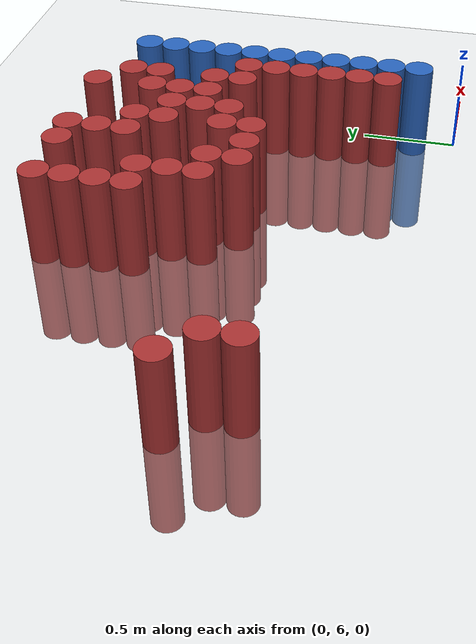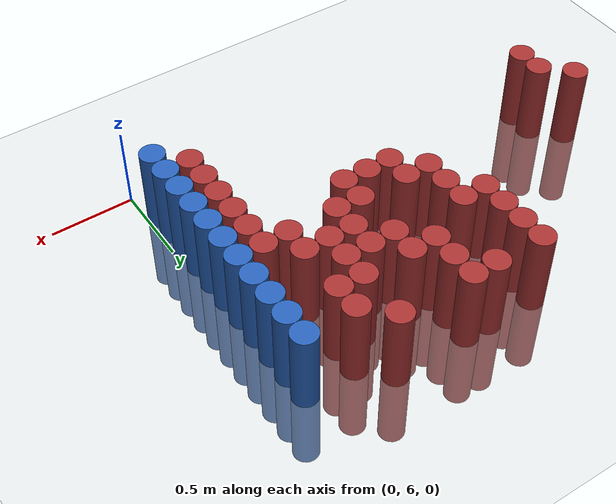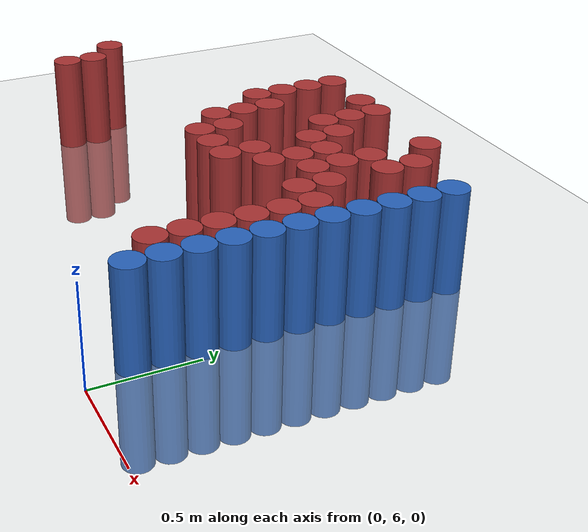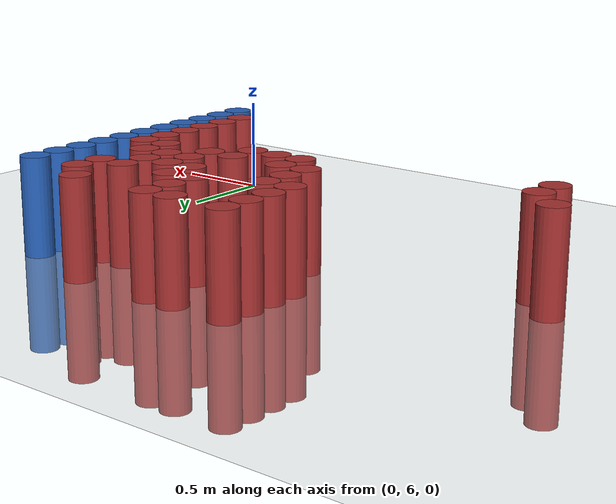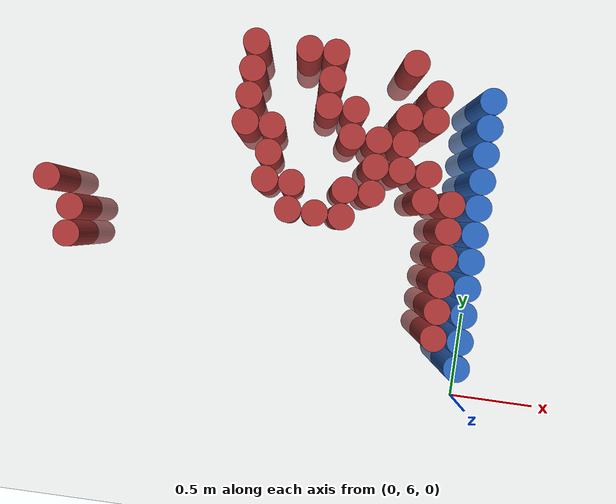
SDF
<sdf version="1.6">
 <world name="default">
  <model name="ground_plane">
   <static>1</static>
   <link name="link">
    <collision name="collision">
     <geometry><plane><normal>0 0 1</normal><size>100 100</size></plane></geometry>
     <surface><friction><ode><mu>100</mu><mu2>50</mu2></ode></friction></surface>
    </collision>
    <visual name="visual">
     <cast_shadows>0</cast_shadows>
     <geometry><plane><normal>0 0 1</normal><size>100 100</size></plane></geometry>
     <material>
      <script><uri>file://media/materials/scripts/gazebo.material</uri><name>Gazebo/Grey</name></script>
     </material>
    </visual>
   </link>
  </model>
  <model name="unit_cylinder_222">
   <static>1</static>
   <pose>-2.475000 6.975000 0.000000 0.000000 0.000000 0.000000</pose>
   <link name="link">
    <inertial>
     <mass>1</mass>
     <inertia><ixx>0.145833</ixx><ixy>0</ixy><ixz>0</ixz><iyy>0.145833</iyy><iyz>0</iyz><izz>0.125</izz></inertia>
    </inertial>
    <collision name="collision">
     <geometry><cylinder><radius>0.075000</radius><length>1</length></cylinder></geometry>
    </collision>
    <visual name="visual">
     <geometry><cylinder><radius>0.075000</radius><length>1</length></cylinder></geometry>
     <material>
      <ambient>0.648000 0.192000 0.192000 1</ambient>
      <diffuse>0.648000 0.192000 0.192000 1</diffuse>
     </material>
     <material>
      <script><name>Gazebo/Grey</name><uri>file://media/materials/scripts/gazebo.material</uri></script>
     </material>
    </visual>
   </link>
  </model>
  <model name="unit_cylinder_223">
   <static>1</static>
   <pose>-2.325000 6.675000 0.000000 0.000000 0.000000 0.000000</pose>
   <link name="link">
    <inertial>
     <mass>1</mass>
     <inertia><ixx>0.145833</ixx><ixy>0</ixy><ixz>0</ixz><iyy>0.145833</iyy><iyz>0</iyz><izz>0.125</izz></inertia>
    </inertial>
    <collision name="collision">
     <geometry><cylinder><radius>0.075000</radius><length>1</length></cylinder></geometry>
    </collision>
    <visual name="visual">
     <geometry><cylinder><radius>0.075000</radius><length>1</length></cylinder></geometry>
     <material>
      <ambient>0.648000 0.192000 0.192000 1</ambient>
      <diffuse>0.648000 0.192000 0.192000 1</diffuse>
     </material>
     <material>
      <script><name>Gazebo/Grey</name><uri>file://media/materials/scripts/gazebo.material</uri></script>
     </material>
    </visual>
   </link>
  </model>
  <model name="unit_cylinder_224">
   <static>1</static>
   <pose>-2.325000 6.825000 0.000000 0.000000 0.000000 0.000000</pose>
   <link name="link">
    <inertial>
     <mass>1</mass>
     <inertia><ixx>0.145833</ixx><ixy>0</ixy><ixz>0</ixz><iyy>0.145833</iyy><iyz>0</iyz><izz>0.125</izz></inertia>
    </inertial>
    <collision name="collision">
     <geometry><cylinder><radius>0.075000</radius><length>1</length></cylinder></geometry>
    </collision>
    <visual name="visual">
     <geometry><cylinder><radius>0.075000</radius><length>1</length></cylinder></geometry>
     <material>
      <ambient>0.648000 0.192000 0.192000 1</ambient>
      <diffuse>0.648000 0.192000 0.192000 1</diffuse>
     </material>
     <material>
      <script><name>Gazebo/Grey</name><uri>file://media/materials/scripts/gazebo.material</uri></script>
     </material>
    </visual>
   </link>
  </model>
  <model name="unit_cylinder_236">
   <static>1</static>
   <pose>-1.425000 7.425000 0.000000 0.000000 0.000000 0.000000</pose>
   <link name="link">
    <inertial>
     <mass>1</mass>
     <inertia><ixx>0.145833</ixx><ixy>0</ixy><ixz>0</ixz><iyy>0.145833</iyy><iyz>0</iyz><izz>0.125</izz></inertia>
    </inertial>
    <collision name="collision">
     <geometry><cylinder><radius>0.075000</radius><length>1</length></cylinder></geometry>
    </collision>
    <visual name="visual">
     <geometry><cylinder><radius>0.075000</radius><length>1</length></cylinder></geometry>
     <material>
      <ambient>0.648000 0.192000 0.192000 1</ambient>
      <diffuse>0.648000 0.192000 0.192000 1</diffuse>
     </material>
     <material>
      <script><name>Gazebo/Grey</name><uri>file://media/materials/scripts/gazebo.material</uri></script>
     </material>
    </visual>
   </link>
  </model>
  <model name="unit_cylinder_237">
   <static>1</static>
   <pose>-1.425000 7.575000 0.000000 0.000000 0.000000 0.000000</pose>
   <link name="link">
    <inertial>
     <mass>1</mass>
     <inertia><ixx>0.145833</ixx><ixy>0</ixy><ixz>0</ixz><iyy>0.145833</iyy><iyz>0</iyz><izz>0.125</izz></inertia>
    </inertial>
    <collision name="collision">
     <geometry><cylinder><radius>0.075000</radius><length>1</length></cylinder></geometry>
    </collision>
    <visual name="visual">
     <geometry><cylinder><radius>0.075000</radius><length>1</length></cylinder></geometry>
     <material>
      <ambient>0.648000 0.192000 0.192000 1</ambient>
      <diffuse>0.648000 0.192000 0.192000 1</diffuse>
     </material>
     <material>
      <script><name>Gazebo/Grey</name><uri>file://media/materials/scripts/gazebo.material</uri></script>
     </material>
    </visual>
   </link>
  </model>
  <model name="unit_cylinder_238">
   <static>1</static>
   <pose>-1.425000 7.725000 0.000000 0.000000 0.000000 0.000000</pose>
   <link name="link">
    <inertial>
     <mass>1</mass>
     <inertia><ixx>0.145833</ixx><ixy>0</ixy><ixz>0</ixz><iyy>0.145833</iyy><iyz>0</iyz><izz>0.125</izz></inertia>
    </inertial>
    <collision name="collision">
     <geometry><cylinder><radius>0.075000</radius><length>1</length></cylinder></geometry>
    </collision>
    <visual name="visual">
     <geometry><cylinder><radius>0.075000</radius><length>1</length></cylinder></geometry>
     <material>
      <ambient>0.648000 0.192000 0.192000 1</ambient>
      <diffuse>0.648000 0.192000 0.192000 1</diffuse>
     </material>
     <material>
      <script><name>Gazebo/Grey</name><uri>file://media/materials/scripts/gazebo.material</uri></script>
     </material>
    </visual>
   </link>
  </model>
  <model name="unit_cylinder_239">
   <static>1</static>
   <pose>-1.425000 7.875000 0.000000 0.000000 0.000000 0.000000</pose>
   <link name="link">
    <inertial>
     <mass>1</mass>
     <inertia><ixx>0.145833</ixx><ixy>0</ixy><ixz>0</ixz><iyy>0.145833</iyy><iyz>0</iyz><izz>0.125</izz></inertia>
    </inertial>
    <collision name="collision">
     <geometry><cylinder><radius>0.075000</radius><length>1</length></cylinder></geometry>
    </collision>
    <visual name="visual">
     <geometry><cylinder><radius>0.075000</radius><length>1</length></cylinder></geometry>
     <material>
      <ambient>0.648000 0.192000 0.192000 1</ambient>
      <diffuse>0.648000 0.192000 0.192000 1</diffuse>
     </material>
     <material>
      <script><name>Gazebo/Grey</name><uri>file://media/materials/scripts/gazebo.material</uri></script>
     </material>
    </visual>
   </link>
  </model>
  <model name="unit_cylinder_246">
   <static>1</static>
   <pose>-1.275000 7.125000 0.000000 0.000000 0.000000 0.000000</pose>
   <link name="link">
    <inertial>
     <mass>1</mass>
     <inertia><ixx>0.145833</ixx><ixy>0</ixy><ixz>0</ixz><iyy>0.145833</iyy><iyz>0</iyz><izz>0.125</izz></inertia>
    </inertial>
    <collision name="collision">
     <geometry><cylinder><radius>0.075000</radius><length>1</length></cylinder></geometry>
    </collision>
    <visual name="visual">
     <geometry><cylinder><radius>0.075000</radius><length>1</length></cylinder></geometry>
     <material>
      <ambient>0.648000 0.192000 0.192000 1</ambient>
      <diffuse>0.648000 0.192000 0.192000 1</diffuse>
     </material>
     <material>
      <script><name>Gazebo/Grey</name><uri>file://media/materials/scripts/gazebo.material</uri></script>
     </material>
    </visual>
   </link>
  </model>
  <model name="unit_cylinder_247">
   <static>1</static>
   <pose>-1.275000 7.275000 0.000000 0.000000 0.000000 0.000000</pose>
   <link name="link">
    <inertial>
     <mass>1</mass>
     <inertia><ixx>0.145833</ixx><ixy>0</ixy><ixz>0</ixz><iyy>0.145833</iyy><iyz>0</iyz><izz>0.125</izz></inertia>
    </inertial>
    <collision name="collision">
     <geometry><cylinder><radius>0.075000</radius><length>1</length></cylinder></geometry>
    </collision>
    <visual name="visual">
     <geometry><cylinder><radius>0.075000</radius><length>1</length></cylinder></geometry>
     <material>
      <ambient>0.648000 0.192000 0.192000 1</ambient>
      <diffuse>0.648000 0.192000 0.192000 1</diffuse>
     </material>
     <material>
      <script><name>Gazebo/Grey</name><uri>file://media/materials/scripts/gazebo.material</uri></script>
     </material>
    </visual>
   </link>
  </model>
  <model name="unit_cylinder_248">
   <static>1</static>
   <pose>-1.275000 7.425000 0.000000 0.000000 0.000000 0.000000</pose>
   <link name="link">
    <inertial>
     <mass>1</mass>
     <inertia><ixx>0.145833</ixx><ixy>0</ixy><ixz>0</ixz><iyy>0.145833</iyy><iyz>0</iyz><izz>0.125</izz></inertia>
    </inertial>
    <collision name="collision">
     <geometry><cylinder><radius>0.075000</radius><length>1</length></cylinder></geometry>
    </collision>
    <visual name="visual">
     <geometry><cylinder><radius>0.075000</radius><length>1</length></cylinder></geometry>
     <material>
      <ambient>0.648000 0.192000 0.192000 1</ambient>
      <diffuse>0.648000 0.192000 0.192000 1</diffuse>
     </material>
     <material>
      <script><name>Gazebo/Grey</name><uri>file://media/materials/scripts/gazebo.material</uri></script>
     </material>
    </visual>
   </link>
  </model>
  <model name="unit_cylinder_251">
   <static>1</static>
   <pose>-1.125000 6.975000 0.000000 0.000000 0.000000 0.000000</pose>
   <link name="link">
    <inertial>
     <mass>1</mass>
     <inertia><ixx>0.145833</ixx><ixy>0</ixy><ixz>0</ixz><iyy>0.145833</iyy><iyz>0</iyz><izz>0.125</izz></inertia>
    </inertial>
    <collision name="collision">
     <geometry><cylinder><radius>0.075000</radius><length>1</length></cylinder></geometry>
    </collision>
    <visual name="visual">
     <geometry><cylinder><radius>0.075000</radius><length>1</length></cylinder></geometry>
     <material>
      <ambient>0.648000 0.192000 0.192000 1</ambient>
      <diffuse>0.648000 0.192000 0.192000 1</diffuse>
     </material>
     <material>
      <script><name>Gazebo/Grey</name><uri>file://media/materials/scripts/gazebo.material</uri></script>
     </material>
    </visual>
   </link>
  </model>
  <model name="unit_cylinder_252">
   <static>1</static>
   <pose>-1.125000 7.125000 0.000000 0.000000 0.000000 0.000000</pose>
   <link name="link">
    <inertial>
     <mass>1</mass>
     <inertia><ixx>0.145833</ixx><ixy>0</ixy><ixz>0</ixz><iyy>0.145833</iyy><iyz>0</iyz><izz>0.125</izz></inertia>
    </inertial>
    <collision name="collision">
     <geometry><cylinder><radius>0.075000</radius><length>1</length></cylinder></geometry>
    </collision>
    <visual name="visual">
     <geometry><cylinder><radius>0.075000</radius><length>1</length></cylinder></geometry>
     <material>
      <ambient>0.648000 0.192000 0.192000 1</ambient>
      <diffuse>0.648000 0.192000 0.192000 1</diffuse>
     </material>
     <material>
      <script><name>Gazebo/Grey</name><uri>file://media/materials/scripts/gazebo.material</uri></script>
     </material>
    </visual>
   </link>
  </model>
  <model name="unit_cylinder_253">
   <static>1</static>
   <pose>-1.125000 7.875000 0.000000 0.000000 0.000000 0.000000</pose>
   <link name="link">
    <inertial>
     <mass>1</mass>
     <inertia><ixx>0.145833</ixx><ixy>0</ixy><ixz>0</ixz><iyy>0.145833</iyy><iyz>0</iyz><izz>0.125</izz></inertia>
    </inertial>
    <collision name="collision">
     <geometry><cylinder><radius>0.075000</radius><length>1</length></cylinder></geometry>
    </collision>
    <visual name="visual">
     <geometry><cylinder><radius>0.075000</radius><length>1</length></cylinder></geometry>
     <material>
      <ambient>0.648000 0.192000 0.192000 1</ambient>
      <diffuse>0.648000 0.192000 0.192000 1</diffuse>
     </material>
     <material>
      <script><name>Gazebo/Grey</name><uri>file://media/materials/scripts/gazebo.material</uri></script>
     </material>
    </visual>
   </link>
  </model>
  <model name="unit_cylinder_258">
   <static>1</static>
   <pose>-0.975000 6.975000 0.000000 0.000000 0.000000 0.000000</pose>
   <link name="link">
    <inertial>
     <mass>1</mass>
     <inertia><ixx>0.145833</ixx><ixy>0</ixy><ixz>0</ixz><iyy>0.145833</iyy><iyz>0</iyz><izz>0.125</izz></inertia>
    </inertial>
    <collision name="collision">
     <geometry><cylinder><radius>0.075000</radius><length>1</length></cylinder></geometry>
    </collision>
    <visual name="visual">
     <geometry><cylinder><radius>0.075000</radius><length>1</length></cylinder></geometry>
     <material>
      <ambient>0.648000 0.192000 0.192000 1</ambient>
      <diffuse>0.648000 0.192000 0.192000 1</diffuse>
     </material>
     <material>
      <script><name>Gazebo/Grey</name><uri>file://media/materials/scripts/gazebo.material</uri></script>
     </material>
    </visual>
   </link>
  </model>
  <model name="unit_cylinder_259">
   <static>1</static>
   <pose>-0.975000 7.575000 0.000000 0.000000 0.000000 0.000000</pose>
   <link name="link">
    <inertial>
     <mass>1</mass>
     <inertia><ixx>0.145833</ixx><ixy>0</ixy><ixz>0</ixz><iyy>0.145833</iyy><iyz>0</iyz><izz>0.125</izz></inertia>
    </inertial>
    <collision name="collision">
     <geometry><cylinder><radius>0.075000</radius><length>1</length></cylinder></geometry>
    </collision>
    <visual name="visual">
     <geometry><cylinder><radius>0.075000</radius><length>1</length></cylinder></geometry>
     <material>
      <ambient>0.648000 0.192000 0.192000 1</ambient>
      <diffuse>0.648000 0.192000 0.192000 1</diffuse>
     </material>
     <material>
      <script><name>Gazebo/Grey</name><uri>file://media/materials/scripts/gazebo.material</uri></script>
     </material>
    </visual>
   </link>
  </model>
  <model name="unit_cylinder_260">
   <static>1</static>
   <pose>-0.975000 7.725000 0.000000 0.000000 0.000000 0.000000</pose>
   <link name="link">
    <inertial>
     <mass>1</mass>
     <inertia><ixx>0.145833</ixx><ixy>0</ixy><ixz>0</ixz><iyy>0.145833</iyy><iyz>0</iyz><izz>0.125</izz></inertia>
    </inertial>
    <collision name="collision">
     <geometry><cylinder><radius>0.075000</radius><length>1</length></cylinder></geometry>
    </collision>
    <visual name="visual">
     <geometry><cylinder><radius>0.075000</radius><length>1</length></cylinder></geometry>
     <material>
      <ambient>0.648000 0.192000 0.192000 1</ambient>
      <diffuse>0.648000 0.192000 0.192000 1</diffuse>
     </material>
     <material>
      <script><name>Gazebo/Grey</name><uri>file://media/materials/scripts/gazebo.material</uri></script>
     </material>
    </visual>
   </link>
  </model>
  <model name="unit_cylinder_261">
   <static>1</static>
   <pose>-0.975000 7.875000 0.000000 0.000000 0.000000 0.000000</pose>
   <link name="link">
    <inertial>
     <mass>1</mass>
     <inertia><ixx>0.145833</ixx><ixy>0</ixy><ixz>0</ixz><iyy>0.145833</iyy><iyz>0</iyz><izz>0.125</izz></inertia>
    </inertial>
    <collision name="collision">
     <geometry><cylinder><radius>0.075000</radius><length>1</length></cylinder></geometry>
    </collision>
    <visual name="visual">
     <geometry><cylinder><radius>0.075000</radius><length>1</length></cylinder></geometry>
     <material>
      <ambient>0.648000 0.192000 0.192000 1</ambient>
      <diffuse>0.648000 0.192000 0.192000 1</diffuse>
     </material>
     <material>
      <script><name>Gazebo/Grey</name><uri>file://media/materials/scripts/gazebo.material</uri></script>
     </material>
    </visual>
   </link>
  </model>
  <model name="unit_cylinder_269">
   <static>1</static>
   <pose>-0.825000 6.975000 0.000000 0.000000 0.000000 0.000000</pose>
   <link name="link">
    <inertial>
     <mass>1</mass>
     <inertia><ixx>0.145833</ixx><ixy>0</ixy><ixz>0</ixz><iyy>0.145833</iyy><iyz>0</iyz><izz>0.125</izz></inertia>
    </inertial>
    <collision name="collision">
     <geometry><cylinder><radius>0.075000</radius><length>1</length></cylinder></geometry>
    </collision>
    <visual name="visual">
     <geometry><cylinder><radius>0.075000</radius><length>1</length></cylinder></geometry>
     <material>
      <ambient>0.648000 0.192000 0.192000 1</ambient>
      <diffuse>0.648000 0.192000 0.192000 1</diffuse>
     </material>
     <material>
      <script><name>Gazebo/Grey</name><uri>file://media/materials/scripts/gazebo.material</uri></script>
     </material>
    </visual>
   </link>
  </model>
  <model name="unit_cylinder_270">
   <static>1</static>
   <pose>-0.825000 7.125000 0.000000 0.000000 0.000000 0.000000</pose>
   <link name="link">
    <inertial>
     <mass>1</mass>
     <inertia><ixx>0.145833</ixx><ixy>0</ixy><ixz>0</ixz><iyy>0.145833</iyy><iyz>0</iyz><izz>0.125</izz></inertia>
    </inertial>
    <collision name="collision">
     <geometry><cylinder><radius>0.075000</radius><length>1</length></cylinder></geometry>
    </collision>
    <visual name="visual">
     <geometry><cylinder><radius>0.075000</radius><length>1</length></cylinder></geometry>
     <material>
      <ambient>0.648000 0.192000 0.192000 1</ambient>
      <diffuse>0.648000 0.192000 0.192000 1</diffuse>
     </material>
     <material>
      <script><name>Gazebo/Grey</name><uri>file://media/materials/scripts/gazebo.material</uri></script>
     </material>
    </visual>
   </link>
  </model>
  <model name="unit_cylinder_271">
   <static>1</static>
   <pose>-0.825000 7.425000 0.000000 0.000000 0.000000 0.000000</pose>
   <link name="link">
    <inertial>
     <mass>1</mass>
     <inertia><ixx>0.145833</ixx><ixy>0</ixy><ixz>0</ixz><iyy>0.145833</iyy><iyz>0</iyz><izz>0.125</izz></inertia>
    </inertial>
    <collision name="collision">
     <geometry><cylinder><radius>0.075000</radius><length>1</length></cylinder></geometry>
    </collision>
    <visual name="visual">
     <geometry><cylinder><radius>0.075000</radius><length>1</length></cylinder></geometry>
     <material>
      <ambient>0.648000 0.192000 0.192000 1</ambient>
      <diffuse>0.648000 0.192000 0.192000 1</diffuse>
     </material>
     <material>
      <script><name>Gazebo/Grey</name><uri>file://media/materials/scripts/gazebo.material</uri></script>
     </material>
    </visual>
   </link>
  </model>
  <model name="unit_cylinder_272">
   <static>1</static>
   <pose>-0.825000 7.575000 0.000000 0.000000 0.000000 0.000000</pose>
   <link name="link">
    <inertial>
     <mass>1</mass>
     <inertia><ixx>0.145833</ixx><ixy>0</ixy><ixz>0</ixz><iyy>0.145833</iyy><iyz>0</iyz><izz>0.125</izz></inertia>
    </inertial>
    <collision name="collision">
     <geometry><cylinder><radius>0.075000</radius><length>1</length></cylinder></geometry>
    </collision>
    <visual name="visual">
     <geometry><cylinder><radius>0.075000</radius><length>1</length></cylinder></geometry>
     <material>
      <ambient>0.648000 0.192000 0.192000 1</ambient>
      <diffuse>0.648000 0.192000 0.192000 1</diffuse>
     </material>
     <material>
      <script><name>Gazebo/Grey</name><uri>file://media/materials/scripts/gazebo.material</uri></script>
     </material>
    </visual>
   </link>
  </model>
  <model name="unit_cylinder_282">
   <static>1</static>
   <pose>-0.675000 7.125000 0.000000 0.000000 0.000000 0.000000</pose>
   <link name="link">
    <inertial>
     <mass>1</mass>
     <inertia><ixx>0.145833</ixx><ixy>0</ixy><ixz>0</ixz><iyy>0.145833</iyy><iyz>0</iyz><izz>0.125</izz></inertia>
    </inertial>
    <collision name="collision">
     <geometry><cylinder><radius>0.075000</radius><length>1</length></cylinder></geometry>
    </collision>
    <visual name="visual">
     <geometry><cylinder><radius>0.075000</radius><length>1</length></cylinder></geometry>
     <material>
      <ambient>0.648000 0.192000 0.192000 1</ambient>
      <diffuse>0.648000 0.192000 0.192000 1</diffuse>
     </material>
     <material>
      <script><name>Gazebo/Grey</name><uri>file://media/materials/scripts/gazebo.material</uri></script>
     </material>
    </visual>
   </link>
  </model>
  <model name="unit_cylinder_283">
   <static>1</static>
   <pose>-0.675000 7.275000 0.000000 0.000000 0.000000 0.000000</pose>
   <link name="link">
    <inertial>
     <mass>1</mass>
     <inertia><ixx>0.145833</ixx><ixy>0</ixy><ixz>0</ixz><iyy>0.145833</iyy><iyz>0</iyz><izz>0.125</izz></inertia>
    </inertial>
    <collision name="collision">
     <geometry><cylinder><radius>0.075000</radius><length>1</length></cylinder></geometry>
    </collision>
    <visual name="visual">
     <geometry><cylinder><radius>0.075000</radius><length>1</length></cylinder></geometry>
     <material>
      <ambient>0.648000 0.192000 0.192000 1</ambient>
      <diffuse>0.648000 0.192000 0.192000 1</diffuse>
     </material>
     <material>
      <script><name>Gazebo/Grey</name><uri>file://media/materials/scripts/gazebo.material</uri></script>
     </material>
    </visual>
   </link>
  </model>
  <model name="unit_cylinder_284">
   <static>1</static>
   <pose>-0.675000 7.425000 0.000000 0.000000 0.000000 0.000000</pose>
   <link name="link">
    <inertial>
     <mass>1</mass>
     <inertia><ixx>0.145833</ixx><ixy>0</ixy><ixz>0</ixz><iyy>0.145833</iyy><iyz>0</iyz><izz>0.125</izz></inertia>
    </inertial>
    <collision name="collision">
     <geometry><cylinder><radius>0.075000</radius><length>1</length></cylinder></geometry>
    </collision>
    <visual name="visual">
     <geometry><cylinder><radius>0.075000</radius><length>1</length></cylinder></geometry>
     <material>
      <ambient>0.648000 0.192000 0.192000 1</ambient>
      <diffuse>0.648000 0.192000 0.192000 1</diffuse>
     </material>
     <material>
      <script><name>Gazebo/Grey</name><uri>file://media/materials/scripts/gazebo.material</uri></script>
     </material>
    </visual>
   </link>
  </model>
  <model name="unit_cylinder_291">
   <static>1</static>
   <pose>-0.525000 7.275000 0.000000 0.000000 0.000000 0.000000</pose>
   <link name="link">
    <inertial>
     <mass>1</mass>
     <inertia><ixx>0.145833</ixx><ixy>0</ixy><ixz>0</ixz><iyy>0.145833</iyy><iyz>0</iyz><izz>0.125</izz></inertia>
    </inertial>
    <collision name="collision">
     <geometry><cylinder><radius>0.075000</radius><length>1</length></cylinder></geometry>
    </collision>
    <visual name="visual">
     <geometry><cylinder><radius>0.075000</radius><length>1</length></cylinder></geometry>
     <material>
      <ambient>0.648000 0.192000 0.192000 1</ambient>
      <diffuse>0.648000 0.192000 0.192000 1</diffuse>
     </material>
     <material>
      <script><name>Gazebo/Grey</name><uri>file://media/materials/scripts/gazebo.material</uri></script>
     </material>
    </visual>
   </link>
  </model>
  <model name="unit_cylinder_292">
   <static>1</static>
   <pose>-0.525000 7.425000 0.000000 0.000000 0.000000 0.000000</pose>
   <link name="link">
    <inertial>
     <mass>1</mass>
     <inertia><ixx>0.145833</ixx><ixy>0</ixy><ixz>0</ixz><iyy>0.145833</iyy><iyz>0</iyz><izz>0.125</izz></inertia>
    </inertial>
    <collision name="collision">
     <geometry><cylinder><radius>0.075000</radius><length>1</length></cylinder></geometry>
    </collision>
    <visual name="visual">
     <geometry><cylinder><radius>0.075000</radius><length>1</length></cylinder></geometry>
     <material>
      <ambient>0.648000 0.192000 0.192000 1</ambient>
      <diffuse>0.648000 0.192000 0.192000 1</diffuse>
     </material>
     <material>
      <script><name>Gazebo/Grey</name><uri>file://media/materials/scripts/gazebo.material</uri></script>
     </material>
    </visual>
   </link>
  </model>
  <model name="unit_cylinder_293">
   <static>1</static>
   <pose>-0.525000 7.575000 0.000000 0.000000 0.000000 0.000000</pose>
   <link name="link">
    <inertial>
     <mass>1</mass>
     <inertia><ixx>0.145833</ixx><ixy>0</ixy><ixz>0</ixz><iyy>0.145833</iyy><iyz>0</iyz><izz>0.125</izz></inertia>
    </inertial>
    <collision name="collision">
     <geometry><cylinder><radius>0.075000</radius><length>1</length></cylinder></geometry>
    </collision>
    <visual name="visual">
     <geometry><cylinder><radius>0.075000</radius><length>1</length></cylinder></geometry>
     <material>
      <ambient>0.648000 0.192000 0.192000 1</ambient>
      <diffuse>0.648000 0.192000 0.192000 1</diffuse>
     </material>
     <material>
      <script><name>Gazebo/Grey</name><uri>file://media/materials/scripts/gazebo.material</uri></script>
     </material>
    </visual>
   </link>
  </model>
  <model name="unit_cylinder_294">
   <static>1</static>
   <pose>-0.525000 7.875000 0.000000 0.000000 0.000000 0.000000</pose>
   <link name="link">
    <inertial>
     <mass>1</mass>
     <inertia><ixx>0.145833</ixx><ixy>0</ixy><ixz>0</ixz><iyy>0.145833</iyy><iyz>0</iyz><izz>0.125</izz></inertia>
    </inertial>
    <collision name="collision">
     <geometry><cylinder><radius>0.075000</radius><length>1</length></cylinder></geometry>
    </collision>
    <visual name="visual">
     <geometry><cylinder><radius>0.075000</radius><length>1</length></cylinder></geometry>
     <material>
      <ambient>0.648000 0.192000 0.192000 1</ambient>
      <diffuse>0.648000 0.192000 0.192000 1</diffuse>
     </material>
     <material>
      <script><name>Gazebo/Grey</name><uri>file://media/materials/scripts/gazebo.material</uri></script>
     </material>
    </visual>
   </link>
  </model>
  <model name="unit_cylinder_297">
   <static>1</static>
   <pose>-0.375000 7.125000 0.000000 0.000000 0.000000 0.000000</pose>
   <link name="link">
    <inertial>
     <mass>1</mass>
     <inertia><ixx>0.145833</ixx><ixy>0</ixy><ixz>0</ixz><iyy>0.145833</iyy><iyz>0</iyz><izz>0.125</izz></inertia>
    </inertial>
    <collision name="collision">
     <geometry><cylinder><radius>0.075000</radius><length>1</length></cylinder></geometry>
    </collision>
    <visual name="visual">
     <geometry><cylinder><radius>0.075000</radius><length>1</length></cylinder></geometry>
     <material>
      <ambient>0.648000 0.192000 0.192000 1</ambient>
      <diffuse>0.648000 0.192000 0.192000 1</diffuse>
     </material>
     <material>
      <script><name>Gazebo/Grey</name><uri>file://media/materials/scripts/gazebo.material</uri></script>
     </material>
    </visual>
   </link>
  </model>
  <model name="unit_cylinder_298">
   <static>1</static>
   <pose>-0.375000 7.275000 0.000000 0.000000 0.000000 0.000000</pose>
   <link name="link">
    <inertial>
     <mass>1</mass>
     <inertia><ixx>0.145833</ixx><ixy>0</ixy><ixz>0</ixz><iyy>0.145833</iyy><iyz>0</iyz><izz>0.125</izz></inertia>
    </inertial>
    <collision name="collision">
     <geometry><cylinder><radius>0.075000</radius><length>1</length></cylinder></geometry>
    </collision>
    <visual name="visual">
     <geometry><cylinder><radius>0.075000</radius><length>1</length></cylinder></geometry>
     <material>
      <ambient>0.648000 0.192000 0.192000 1</ambient>
      <diffuse>0.648000 0.192000 0.192000 1</diffuse>
     </material>
     <material>
      <script><name>Gazebo/Grey</name><uri>file://media/materials/scripts/gazebo.material</uri></script>
     </material>
    </visual>
   </link>
  </model>
  <model name="unit_cylinder_299">
   <static>1</static>
   <pose>-0.375000 7.575000 0.000000 0.000000 0.000000 0.000000</pose>
   <link name="link">
    <inertial>
     <mass>1</mass>
     <inertia><ixx>0.145833</ixx><ixy>0</ixy><ixz>0</ixz><iyy>0.145833</iyy><iyz>0</iyz><izz>0.125</izz></inertia>
    </inertial>
    <collision name="collision">
     <geometry><cylinder><radius>0.075000</radius><length>1</length></cylinder></geometry>
    </collision>
    <visual name="visual">
     <geometry><cylinder><radius>0.075000</radius><length>1</length></cylinder></geometry>
     <material>
      <ambient>0.648000 0.192000 0.192000 1</ambient>
      <diffuse>0.648000 0.192000 0.192000 1</diffuse>
     </material>
     <material>
      <script><name>Gazebo/Grey</name><uri>file://media/materials/scripts/gazebo.material</uri></script>
     </material>
    </visual>
   </link>
  </model>
  <model name="unit_cylinder_300">
   <static>1</static>
   <pose>-0.375000 7.725000 0.000000 0.000000 0.000000 0.000000</pose>
   <link name="link">
    <inertial>
     <mass>1</mass>
     <inertia><ixx>0.145833</ixx><ixy>0</ixy><ixz>0</ixz><iyy>0.145833</iyy><iyz>0</iyz><izz>0.125</izz></inertia>
    </inertial>
    <collision name="collision">
     <geometry><cylinder><radius>0.075000</radius><length>1</length></cylinder></geometry>
    </collision>
    <visual name="visual">
     <geometry><cylinder><radius>0.075000</radius><length>1</length></cylinder></geometry>
     <material>
      <ambient>0.648000 0.192000 0.192000 1</ambient>
      <diffuse>0.648000 0.192000 0.192000 1</diffuse>
     </material>
     <material>
      <script><name>Gazebo/Grey</name><uri>file://media/materials/scripts/gazebo.material</uri></script>
     </material>
    </visual>
   </link>
  </model>
  <model name="unit_cylinder_305">
   <static>1</static>
   <pose>-0.225000 6.375000 0.000000 0.000000 0.000000 0.000000</pose>
   <link name="link">
    <inertial>
     <mass>1</mass>
     <inertia><ixx>0.145833</ixx><ixy>0</ixy><ixz>0</ixz><iyy>0.145833</iyy><iyz>0</iyz><izz>0.125</izz></inertia>
    </inertial>
    <collision name="collision">
     <geometry><cylinder><radius>0.075000</radius><length>1</length></cylinder></geometry>
    </collision>
    <visual name="visual">
     <geometry><cylinder><radius>0.075000</radius><length>1</length></cylinder></geometry>
     <material>
      <ambient>0.648000 0.192000 0.192000 1</ambient>
      <diffuse>0.648000 0.192000 0.192000 1</diffuse>
     </material>
     <material>
      <script><name>Gazebo/Grey</name><uri>file://media/materials/scripts/gazebo.material</uri></script>
     </material>
    </visual>
   </link>
  </model>
  <model name="unit_cylinder_306">
   <static>1</static>
   <pose>-0.225000 6.525000 0.000000 0.000000 0.000000 0.000000</pose>
   <link name="link">
    <inertial>
     <mass>1</mass>
     <inertia><ixx>0.145833</ixx><ixy>0</ixy><ixz>0</ixz><iyy>0.145833</iyy><iyz>0</iyz><izz>0.125</izz></inertia>
    </inertial>
    <collision name="collision">
     <geometry><cylinder><radius>0.075000</radius><length>1</length></cylinder></geometry>
    </collision>
    <visual name="visual">
     <geometry><cylinder><radius>0.075000</radius><length>1</length></cylinder></geometry>
     <material>
      <ambient>0.648000 0.192000 0.192000 1</ambient>
      <diffuse>0.648000 0.192000 0.192000 1</diffuse>
     </material>
     <material>
      <script><name>Gazebo/Grey</name><uri>file://media/materials/scripts/gazebo.material</uri></script>
     </material>
    </visual>
   </link>
  </model>
  <model name="unit_cylinder_307">
   <static>1</static>
   <pose>-0.225000 6.675000 0.000000 0.000000 0.000000 0.000000</pose>
   <link name="link">
    <inertial>
     <mass>1</mass>
     <inertia><ixx>0.145833</ixx><ixy>0</ixy><ixz>0</ixz><iyy>0.145833</iyy><iyz>0</iyz><izz>0.125</izz></inertia>
    </inertial>
    <collision name="collision">
     <geometry><cylinder><radius>0.075000</radius><length>1</length></cylinder></geometry>
    </collision>
    <visual name="visual">
     <geometry><cylinder><radius>0.075000</radius><length>1</length></cylinder></geometry>
     <material>
      <ambient>0.648000 0.192000 0.192000 1</ambient>
      <diffuse>0.648000 0.192000 0.192000 1</diffuse>
     </material>
     <material>
      <script><name>Gazebo/Grey</name><uri>file://media/materials/scripts/gazebo.material</uri></script>
     </material>
    </visual>
   </link>
  </model>
  <model name="unit_cylinder_308">
   <static>1</static>
   <pose>-0.225000 6.825000 0.000000 0.000000 0.000000 0.000000</pose>
   <link name="link">
    <inertial>
     <mass>1</mass>
     <inertia><ixx>0.145833</ixx><ixy>0</ixy><ixz>0</ixz><iyy>0.145833</iyy><iyz>0</iyz><izz>0.125</izz></inertia>
    </inertial>
    <collision name="collision">
     <geometry><cylinder><radius>0.075000</radius><length>1</length></cylinder></geometry>
    </collision>
    <visual name="visual">
     <geometry><cylinder><radius>0.075000</radius><length>1</length></cylinder></geometry>
     <material>
      <ambient>0.648000 0.192000 0.192000 1</ambient>
      <diffuse>0.648000 0.192000 0.192000 1</diffuse>
     </material>
     <material>
      <script><name>Gazebo/Grey</name><uri>file://media/materials/scripts/gazebo.material</uri></script>
     </material>
    </visual>
   </link>
  </model>
  <model name="unit_cylinder_309">
   <static>1</static>
   <pose>-0.225000 6.975000 0.000000 0.000000 0.000000 0.000000</pose>
   <link name="link">
    <inertial>
     <mass>1</mass>
     <inertia><ixx>0.145833</ixx><ixy>0</ixy><ixz>0</ixz><iyy>0.145833</iyy><iyz>0</iyz><izz>0.125</izz></inertia>
    </inertial>
    <collision name="collision">
     <geometry><cylinder><radius>0.075000</radius><length>1</length></cylinder></geometry>
    </collision>
    <visual name="visual">
     <geometry><cylinder><radius>0.075000</radius><length>1</length></cylinder></geometry>
     <material>
      <ambient>0.648000 0.192000 0.192000 1</ambient>
      <diffuse>0.648000 0.192000 0.192000 1</diffuse>
     </material>
     <material>
      <script><name>Gazebo/Grey</name><uri>file://media/materials/scripts/gazebo.material</uri></script>
     </material>
    </visual>
   </link>
  </model>
  <model name="unit_cylinder_310">
   <static>1</static>
   <pose>-0.225000 7.125000 0.000000 0.000000 0.000000 0.000000</pose>
   <link name="link">
    <inertial>
     <mass>1</mass>
     <inertia><ixx>0.145833</ixx><ixy>0</ixy><ixz>0</ixz><iyy>0.145833</iyy><iyz>0</iyz><izz>0.125</izz></inertia>
    </inertial>
    <collision name="collision">
     <geometry><cylinder><radius>0.075000</radius><length>1</length></cylinder></geometry>
    </collision>
    <visual name="visual">
     <geometry><cylinder><radius>0.075000</radius><length>1</length></cylinder></geometry>
     <material>
      <ambient>0.648000 0.192000 0.192000 1</ambient>
      <diffuse>0.648000 0.192000 0.192000 1</diffuse>
     </material>
     <material>
      <script><name>Gazebo/Grey</name><uri>file://media/materials/scripts/gazebo.material</uri></script>
     </material>
    </visual>
   </link>
  </model>
  <model name="unit_cylinder_324">
   <static>1</static>
   <pose>-0.075000 6.225000 0.000000 0.000000 0.000000 0.000000</pose>
   <link name="link">
    <inertial>
     <mass>1</mass>
     <inertia><ixx>0.145833</ixx><ixy>0</ixy><ixz>0</ixz><iyy>0.145833</iyy><iyz>0</iyz><izz>0.125</izz></inertia>
    </inertial>
    <collision name="collision">
     <geometry><cylinder><radius>0.075000</radius><length>1</length></cylinder></geometry>
    </collision>
    <visual name="visual">
     <geometry><cylinder><radius>0.075000</radius><length>1</length></cylinder></geometry>
     <material>
      <ambient>0.152000 0.379000 0.720000 1</ambient>
      <diffuse>0.152000 0.379000 0.720000 1</diffuse>
     </material>
     <material>
      <script><name>Gazebo/Grey</name><uri>file://media/materials/scripts/gazebo.material</uri></script>
     </material>
    </visual>
   </link>
  </model>
  <model name="unit_cylinder_325">
   <static>1</static>
   <pose>-0.075000 6.375000 0.000000 0.000000 0.000000 0.000000</pose>
   <link name="link">
    <inertial>
     <mass>1</mass>
     <inertia><ixx>0.145833</ixx><ixy>0</ixy><ixz>0</ixz><iyy>0.145833</iyy><iyz>0</iyz><izz>0.125</izz></inertia>
    </inertial>
    <collision name="collision">
     <geometry><cylinder><radius>0.075000</radius><length>1</length></cylinder></geometry>
    </collision>
    <visual name="visual">
     <geometry><cylinder><radius>0.075000</radius><length>1</length></cylinder></geometry>
     <material>
      <ambient>0.152000 0.379000 0.720000 1</ambient>
      <diffuse>0.152000 0.379000 0.720000 1</diffuse>
     </material>
     <material>
      <script><name>Gazebo/Grey</name><uri>file://media/materials/scripts/gazebo.material</uri></script>
     </material>
    </visual>
   </link>
  </model>
  <model name="unit_cylinder_326">
   <static>1</static>
   <pose>-0.075000 6.525000 0.000000 0.000000 0.000000 0.000000</pose>
   <link name="link">
    <inertial>
     <mass>1</mass>
     <inertia><ixx>0.145833</ixx><ixy>0</ixy><ixz>0</ixz><iyy>0.145833</iyy><iyz>0</iyz><izz>0.125</izz></inertia>
    </inertial>
    <collision name="collision">
     <geometry><cylinder><radius>0.075000</radius><length>1</length></cylinder></geometry>
    </collision>
    <visual name="visual">
     <geometry><cylinder><radius>0.075000</radius><length>1</length></cylinder></geometry>
     <material>
      <ambient>0.152000 0.379000 0.720000 1</ambient>
      <diffuse>0.152000 0.379000 0.720000 1</diffuse>
     </material>
     <material>
      <script><name>Gazebo/Grey</name><uri>file://media/materials/scripts/gazebo.material</uri></script>
     </material>
    </visual>
   </link>
  </model>
  <model name="unit_cylinder_327">
   <static>1</static>
   <pose>-0.075000 6.675000 0.000000 0.000000 0.000000 0.000000</pose>
   <link name="link">
    <inertial>
     <mass>1</mass>
     <inertia><ixx>0.145833</ixx><ixy>0</ixy><ixz>0</ixz><iyy>0.145833</iyy><iyz>0</iyz><izz>0.125</izz></inertia>
    </inertial>
    <collision name="collision">
     <geometry><cylinder><radius>0.075000</radius><length>1</length></cylinder></geometry>
    </collision>
    <visual name="visual">
     <geometry><cylinder><radius>0.075000</radius><length>1</length></cylinder></geometry>
     <material>
      <ambient>0.152000 0.379000 0.720000 1</ambient>
      <diffuse>0.152000 0.379000 0.720000 1</diffuse>
     </material>
     <material>
      <script><name>Gazebo/Grey</name><uri>file://media/materials/scripts/gazebo.material</uri></script>
     </material>
    </visual>
   </link>
  </model>
  <model name="unit_cylinder_328">
   <static>1</static>
   <pose>-0.075000 6.825000 0.000000 0.000000 0.000000 0.000000</pose>
   <link name="link">
    <inertial>
     <mass>1</mass>
     <inertia><ixx>0.145833</ixx><ixy>0</ixy><ixz>0</ixz><iyy>0.145833</iyy><iyz>0</iyz><izz>0.125</izz></inertia>
    </inertial>
    <collision name="collision">
     <geometry><cylinder><radius>0.075000</radius><length>1</length></cylinder></geometry>
    </collision>
    <visual name="visual">
     <geometry><cylinder><radius>0.075000</radius><length>1</length></cylinder></geometry>
     <material>
      <ambient>0.152000 0.379000 0.720000 1</ambient>
      <diffuse>0.152000 0.379000 0.720000 1</diffuse>
     </material>
     <material>
      <script><name>Gazebo/Grey</name><uri>file://media/materials/scripts/gazebo.material</uri></script>
     </material>
    </visual>
   </link>
  </model>
  <model name="unit_cylinder_329">
   <static>1</static>
   <pose>-0.075000 6.975000 0.000000 0.000000 0.000000 0.000000</pose>
   <link name="link">
    <inertial>
     <mass>1</mass>
     <inertia><ixx>0.145833</ixx><ixy>0</ixy><ixz>0</ixz><iyy>0.145833</iyy><iyz>0</iyz><izz>0.125</izz></inertia>
    </inertial>
    <collision name="collision">
     <geometry><cylinder><radius>0.075000</radius><length>1</length></cylinder></geometry>
    </collision>
    <visual name="visual">
     <geometry><cylinder><radius>0.075000</radius><length>1</length></cylinder></geometry>
     <material>
      <ambient>0.152000 0.379000 0.720000 1</ambient>
      <diffuse>0.152000 0.379000 0.720000 1</diffuse>
     </material>
     <material>
      <script><name>Gazebo/Grey</name><uri>file://media/materials/scripts/gazebo.material</uri></script>
     </material>
    </visual>
   </link>
  </model>
  <model name="unit_cylinder_330">
   <static>1</static>
   <pose>-0.075000 7.125000 0.000000 0.000000 0.000000 0.000000</pose>
   <link name="link">
    <inertial>
     <mass>1</mass>
     <inertia><ixx>0.145833</ixx><ixy>0</ixy><ixz>0</ixz><iyy>0.145833</iyy><iyz>0</iyz><izz>0.125</izz></inertia>
    </inertial>
    <collision name="collision">
     <geometry><cylinder><radius>0.075000</radius><length>1</length></cylinder></geometry>
    </collision>
    <visual name="visual">
     <geometry><cylinder><radius>0.075000</radius><length>1</length></cylinder></geometry>
     <material>
      <ambient>0.152000 0.379000 0.720000 1</ambient>
      <diffuse>0.152000 0.379000 0.720000 1</diffuse>
     </material>
     <material>
      <script><name>Gazebo/Grey</name><uri>file://media/materials/scripts/gazebo.material</uri></script>
     </material>
    </visual>
   </link>
  </model>
  <model name="unit_cylinder_331">
   <static>1</static>
   <pose>-0.075000 7.275000 0.000000 0.000000 0.000000 0.000000</pose>
   <link name="link">
    <inertial>
     <mass>1</mass>
     <inertia><ixx>0.145833</ixx><ixy>0</ixy><ixz>0</ixz><iyy>0.145833</iyy><iyz>0</iyz><izz>0.125</izz></inertia>
    </inertial>
    <collision name="collision">
     <geometry><cylinder><radius>0.075000</radius><length>1</length></cylinder></geometry>
    </collision>
    <visual name="visual">
     <geometry><cylinder><radius>0.075000</radius><length>1</length></cylinder></geometry>
     <material>
      <ambient>0.152000 0.379000 0.720000 1</ambient>
      <diffuse>0.152000 0.379000 0.720000 1</diffuse>
     </material>
     <material>
      <script><name>Gazebo/Grey</name><uri>file://media/materials/scripts/gazebo.material</uri></script>
     </material>
    </visual>
   </link>
  </model>
  <model name="unit_cylinder_332">
   <static>1</static>
   <pose>-0.075000 7.425000 0.000000 0.000000 0.000000 0.000000</pose>
   <link name="link">
    <inertial>
     <mass>1</mass>
     <inertia><ixx>0.145833</ixx><ixy>0</ixy><ixz>0</ixz><iyy>0.145833</iyy><iyz>0</iyz><izz>0.125</izz></inertia>
    </inertial>
    <collision name="collision">
     <geometry><cylinder><radius>0.075000</radius><length>1</length></cylinder></geometry>
    </collision>
    <visual name="visual">
     <geometry><cylinder><radius>0.075000</radius><length>1</length></cylinder></geometry>
     <material>
      <ambient>0.152000 0.379000 0.720000 1</ambient>
      <diffuse>0.152000 0.379000 0.720000 1</diffuse>
     </material>
     <material>
      <script><name>Gazebo/Grey</name><uri>file://media/materials/scripts/gazebo.material</uri></script>
     </material>
    </visual>
   </link>
  </model>
  <model name="unit_cylinder_333">
   <static>1</static>
   <pose>-0.075000 7.575000 0.000000 0.000000 0.000000 0.000000</pose>
   <link name="link">
    <inertial>
     <mass>1</mass>
     <inertia><ixx>0.145833</ixx><ixy>0</ixy><ixz>0</ixz><iyy>0.145833</iyy><iyz>0</iyz><izz>0.125</izz></inertia>
    </inertial>
    <collision name="collision">
     <geometry><cylinder><radius>0.075000</radius><length>1</length></cylinder></geometry>
    </collision>
    <visual name="visual">
     <geometry><cylinder><radius>0.075000</radius><length>1</length></cylinder></geometry>
     <material>
      <ambient>0.152000 0.379000 0.720000 1</ambient>
      <diffuse>0.152000 0.379000 0.720000 1</diffuse>
     </material>
     <material>
      <script><name>Gazebo/Grey</name><uri>file://media/materials/scripts/gazebo.material</uri></script>
     </material>
    </visual>
   </link>
  </model>
  <model name="unit_cylinder_334">
   <static>1</static>
   <pose>-0.075000 7.725000 0.000000 0.000000 0.000000 0.000000</pose>
   <link name="link">
    <inertial>
     <mass>1</mass>
     <inertia><ixx>0.145833</ixx><ixy>0</ixy><ixz>0</ixz><iyy>0.145833</iyy><iyz>0</iyz><izz>0.125</izz></inertia>
    </inertial>
    <collision name="collision">
     <geometry><cylinder><radius>0.075000</radius><length>1</length></cylinder></geometry>
    </collision>
    <visual name="visual">
     <geometry><cylinder><radius>0.075000</radius><length>1</length></cylinder></geometry>
     <material>
      <ambient>0.152000 0.379000 0.720000 1</ambient>
      <diffuse>0.152000 0.379000 0.720000 1</diffuse>
     </material>
     <material>
      <script><name>Gazebo/Grey</name><uri>file://media/materials/scripts/gazebo.material</uri></script>
     </material>
    </visual>
   </link>
  </model>
 </world>
</sdf>
